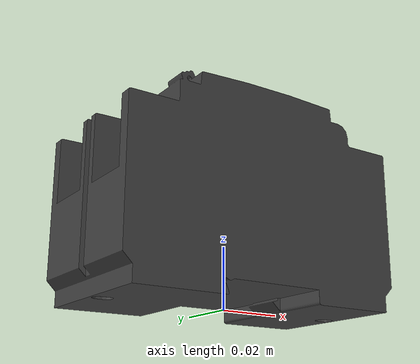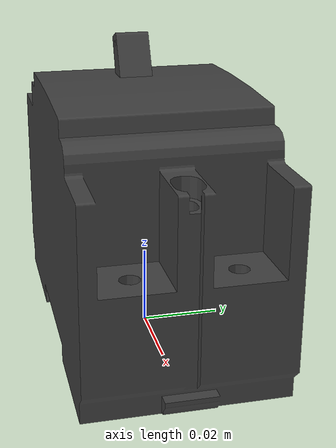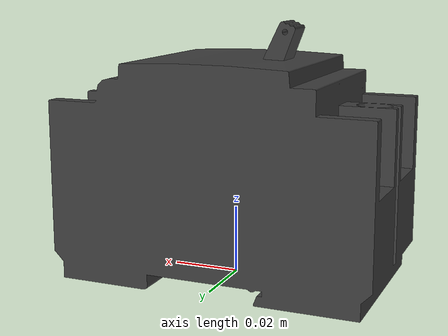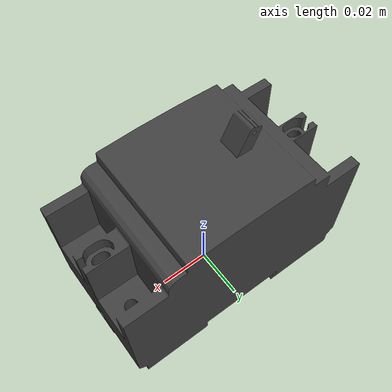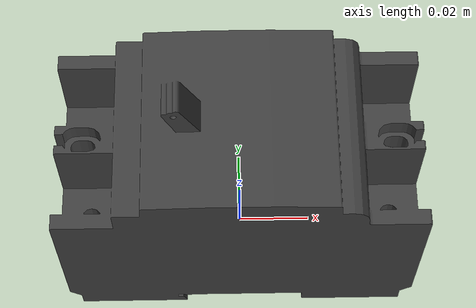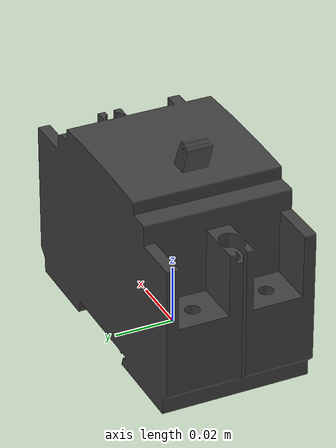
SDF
<?xml version="1.0" ?>
<sdf version="1.6">
  <model name="mccb_abe_32b_30a">
    <link name="link">
      <gravity>false</gravity>
      <visual name="visual">
        <geometry>
          <mesh>
            <uri>file:///root/workcell_ws_classic/src/descriptions/ur_description/meshes/feeder/elec/objects/MCCB_ABE_32B_30A.STL</uri>
            <scale>1 1 1</scale>
          </mesh>
        </geometry>
        <material>
          <!-- Dark grey for circuit breaker -->
          <ambient>0.2 0.2 0.2 1</ambient>
          <diffuse>0.25 0.25 0.25 1</diffuse>
          <specular>0.3 0.3 0.3 1</specular>
          <emissive>0 0 0 1</emissive>
        </material>
      </visual>

        <inertial>
          <mass>0.5</mass>
          <inertia>
            <ixx>0.001</ixx>
            <ixy>0</ixy>
            <ixz>0</ixz>
            <iyy>0.001</iyy>
            <iyz>0</iyz>
            <izz>0.001</izz>
          </inertia>
        </inertial>
    </link>
  </model>
</sdf>
